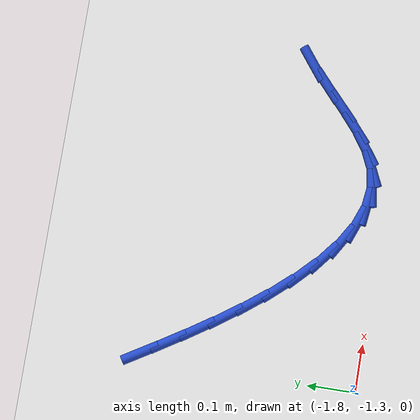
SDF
<sdf version="1.6">
 <world name="default">
  <model name="ground_plane">
   <static>1</static>
   <link name="link">
    <collision name="collision">
     <geometry><plane><normal>0 0 1</normal><size>100 100</size></plane></geometry>
     <surface><friction><ode><mu>100</mu><mu2>50</mu2></ode></friction></surface>
    </collision>
    <visual name="visual">
     <cast_shadows>0</cast_shadows>
     <geometry><plane><normal>0 0 1</normal><size>100 100</size></plane></geometry>
     <material>
      <script><uri>file://media/materials/scripts/gazebo.material</uri><name>Gazebo/WhiteGlow</name></script>
     </material>
    </visual>
   </link>
  </model>
  <model name="line">
   <link name="link_89">
    <pose>-1.7884126219289083 -0.8561120904001223 0.01 0 1.57 -1.0238552956262248</pose>
    <collision name="collision">
     <geometry><cylinder><radius>0.01</radius><length>0.08</length></cylinder></geometry>
    </collision>
    <visual name="visual">
     <material>
      <script><name>Gazebo/Blue</name><uri>file://media/materials/scripts/gazebo.material</uri></script>
     </material>
     <geometry><cylinder><radius>0.01</radius><length>0.08</length></cylinder></geometry>
    </visual>
   </link>
   <link name="link_90">
    <pose>-1.7563423413989065 -0.9087809304310257 0.01 0 1.57 -1.0068361174692921</pose>
    <collision name="collision">
     <geometry><cylinder><radius>0.01</radius><length>0.08</length></cylinder></geometry>
    </collision>
    <visual name="visual">
     <material>
      <script><name>Gazebo/Blue</name><uri>file://media/materials/scripts/gazebo.material</uri></script>
     </material>
     <geometry><cylinder><radius>0.01</radius><length>0.08</length></cylinder></geometry>
    </visual>
   </link>
   <link name="link_91">
    <pose>-1.7227480259134513 -0.9618961415294015 0.01 0 1.57 -0.9826631994743815</pose>
    <collision name="collision">
     <geometry><cylinder><radius>0.01</radius><length>0.08</length></cylinder></geometry>
    </collision>
    <visual name="visual">
     <material>
      <script><name>Gazebo/Blue</name><uri>file://media/materials/scripts/gazebo.material</uri></script>
     </material>
     <geometry><cylinder><radius>0.01</radius><length>0.08</length></cylinder></geometry>
    </visual>
   </link>
   <link name="link_92">
    <pose>-1.6878022986613157 -1.01429991125274 0.01 0 1.57 -0.95017437709596</pose>
    <collision name="collision">
     <geometry><cylinder><radius>0.01</radius><length>0.08</length></cylinder></geometry>
    </collision>
    <visual name="visual">
     <material>
      <script><name>Gazebo/Blue</name><uri>file://media/materials/scripts/gazebo.material</uri></script>
     </material>
     <geometry><cylinder><radius>0.01</radius><length>0.08</length></cylinder></geometry>
    </visual>
   </link>
   <link name="link_93">
    <pose>-1.65167778283127 -1.0648344271585333 0.01 0 1.57 -0.9073909421072486</pose>
    <collision name="collision">
     <geometry><cylinder><radius>0.01</radius><length>0.08</length></cylinder></geometry>
    </collision>
    <visual name="visual">
     <material>
      <script><name>Gazebo/Blue</name><uri>file://media/materials/scripts/gazebo.material</uri></script>
     </material>
     <geometry><cylinder><radius>0.01</radius><length>0.08</length></cylinder></geometry>
    </visual>
   </link>
   <link name="link_94">
    <pose>-1.6145471016120856 -1.1123418768042737 0.01 0 1.57 -0.8512219727040604</pose>
    <collision name="collision">
     <geometry><cylinder><radius>0.01</radius><length>0.08</length></cylinder></geometry>
    </collision>
    <visual name="visual">
     <material>
      <script><name>Gazebo/Blue</name><uri>file://media/materials/scripts/gazebo.material</uri></script>
     </material>
     <geometry><cylinder><radius>0.01</radius><length>0.08</length></cylinder></geometry>
    </visual>
   </link>
   <link name="link_95">
    <pose>-1.5765828781925315 -1.1556644477474525 0.01 0 1.57 -0.7769751207008078</pose>
    <collision name="collision">
     <geometry><cylinder><radius>0.01</radius><length>0.08</length></cylinder></geometry>
    </collision>
    <visual name="visual">
     <material>
      <script><name>Gazebo/Blue</name><uri>file://media/materials/scripts/gazebo.material</uri></script>
     </material>
     <geometry><cylinder><radius>0.01</radius><length>0.08</length></cylinder></geometry>
    </visual>
   </link>
   <link name="link_96">
    <pose>-1.5379577357613812 -1.193644327545561 0.01 0 1.57 -0.677674597674402</pose>
    <collision name="collision">
     <geometry><cylinder><radius>0.01</radius><length>0.08</length></cylinder></geometry>
    </collision>
    <visual name="visual">
     <material>
      <script><name>Gazebo/Blue</name><uri>file://media/materials/scripts/gazebo.material</uri></script>
     </material>
     <geometry><cylinder><radius>0.01</radius><length>0.08</length></cylinder></geometry>
    </visual>
   </link>
   <link name="link_97">
    <pose>-1.4988442975074039 -1.225123703756091 0.01 0 1.57 -0.5434646942765711</pose>
    <collision name="collision">
     <geometry><cylinder><radius>0.01</radius><length>0.08</length></cylinder></geometry>
    </collision>
    <visual name="visual">
     <material>
      <script><name>Gazebo/Blue</name><uri>file://media/materials/scripts/gazebo.material</uri></script>
     </material>
     <geometry><cylinder><radius>0.01</radius><length>0.08</length></cylinder></geometry>
    </visual>
   </link>
   <link name="link_98">
    <pose>-1.4594151866193716 -1.248944763936534 0.01 0 1.57 -0.3624293974409361</pose>
    <collision name="collision">
     <geometry><cylinder><radius>0.01</radius><length>0.08</length></cylinder></geometry>
    </collision>
    <visual name="visual">
     <material>
      <script><name>Gazebo/Blue</name><uri>file://media/materials/scripts/gazebo.material</uri></script>
     </material>
     <geometry><cylinder><radius>0.01</radius><length>0.08</length></cylinder></geometry>
    </visual>
   </link>
   <link name="link_99">
    <pose>-1.4198430262860549 -1.263949695644382 0.01 0 1.57 -0.12654976980469804</pose>
    <collision name="collision">
     <geometry><cylinder><radius>0.01</radius><length>0.08</length></cylinder></geometry>
    </collision>
    <visual name="visual">
     <material>
      <script><name>Gazebo/Blue</name><uri>file://media/materials/scripts/gazebo.material</uri></script>
     </material>
     <geometry><cylinder><radius>0.01</radius><length>0.08</length></cylinder></geometry>
    </visual>
   </link>
   <link name="link_100">
    <pose>-1.3803004396962237 -1.2689806864371262 0.01 0 1.57 0.15385082147564072</pose>
    <collision name="collision">
     <geometry><cylinder><radius>0.01</radius><length>0.08</length></cylinder></geometry>
    </collision>
    <visual name="visual">
     <material>
      <script><name>Gazebo/Blue</name><uri>file://media/materials/scripts/gazebo.material</uri></script>
     </material>
     <geometry><cylinder><radius>0.01</radius><length>0.08</length></cylinder></geometry>
    </visual>
   </link>
   <link name="link_101">
    <pose>-1.3409600500386507 -1.2628799238722583 0.01 0 1.57 0.43076382165456367</pose>
    <collision name="collision">
     <geometry><cylinder><radius>0.01</radius><length>0.08</length></cylinder></geometry>
    </collision>
    <visual name="visual">
     <material>
      <script><name>Gazebo/Blue</name><uri>file://media/materials/scripts/gazebo.material</uri></script>
     </material>
     <geometry><cylinder><radius>0.01</radius><length>0.08</length></cylinder></geometry>
    </visual>
   </link>
   <link name="link_102">
    <pose>-1.3019342308368886 -1.2449457715374748 0.01 0 1.57 0.6154410115260287</pose>
    <collision name="collision">
     <geometry><cylinder><radius>0.01</radius><length>0.08</length></cylinder></geometry>
    </collision>
    <visual name="visual">
     <material>
      <script><name>Gazebo/Blue</name><uri>file://media/materials/scripts/gazebo.material</uri></script>
     </material>
     <geometry><cylinder><radius>0.01</radius><length>0.08</length></cylinder></geometry>
    </visual>
   </link>
   <link name="link_103">
    <pose>-1.2629514815683571 -1.2173830679001014 0.01 0 1.57 0.7101916134764388</pose>
    <collision name="collision">
     <geometry><cylinder><radius>0.01</radius><length>0.08</length></cylinder></geometry>
    </collision>
    <visual name="visual">
     <material>
      <script><name>Gazebo/Blue</name><uri>file://media/materials/scripts/gazebo.material</uri></script>
     </material>
     <geometry><cylinder><radius>0.01</radius><length>0.08</length></cylinder></geometry>
    </visual>
   </link>
   <link name="link_104">
    <pose>-1.223589646594033 -1.1835373258644268 0.01 0 1.57 0.7414612388413875</pose>
    <collision name="collision">
     <geometry><cylinder><radius>0.01</radius><length>0.08</length></cylinder></geometry>
    </collision>
    <visual name="visual">
     <material>
      <script><name>Gazebo/Blue</name><uri>file://media/materials/scripts/gazebo.material</uri></script>
     </material>
     <geometry><cylinder><radius>0.01</radius><length>0.08</length></cylinder></geometry>
    </visual>
   </link>
   <link name="link_105">
    <pose>-1.1834262142977725 -1.146756753590038 0.01 0 1.57 0.7209212164480016</pose>
    <collision name="collision">
     <geometry><cylinder><radius>0.01</radius><length>0.08</length></cylinder></geometry>
    </collision>
    <visual name="visual">
     <material>
      <script><name>Gazebo/Blue</name><uri>file://media/materials/scripts/gazebo.material</uri></script>
     </material>
     <geometry><cylinder><radius>0.01</radius><length>0.08</length></cylinder></geometry>
    </visual>
   </link>
   <link name="link_106">
    <pose>-1.1420386730634327 -1.1103895592365216 0.01 0 1.57 0.6533499782347229</pose>
    <collision name="collision">
     <geometry><cylinder><radius>0.01</radius><length>0.08</length></cylinder></geometry>
    </collision>
    <visual name="visual">
     <material>
      <script><name>Gazebo/Blue</name><uri>file://media/materials/scripts/gazebo.material</uri></script>
     </material>
     <geometry><cylinder><radius>0.01</radius><length>0.08</length></cylinder></geometry>
    </visual>
   </link>
  </model>
 </world>
</sdf>
